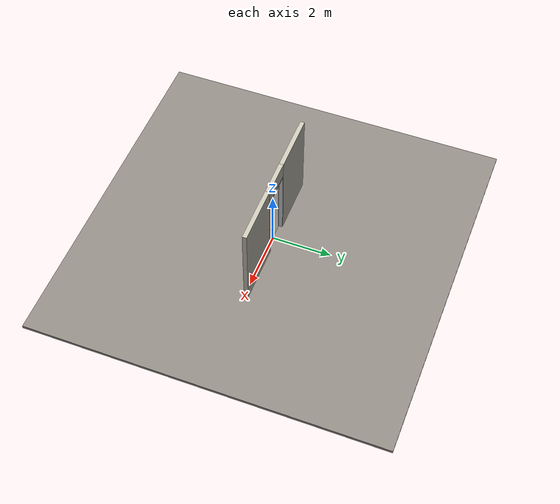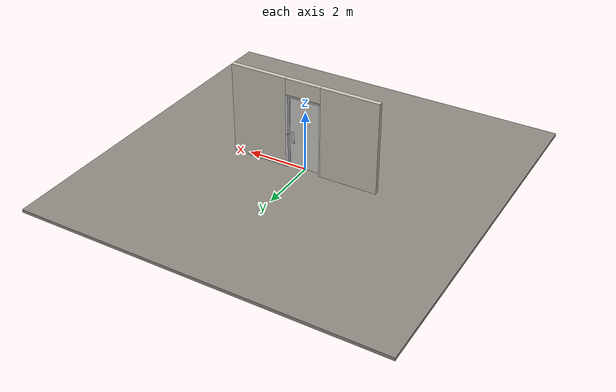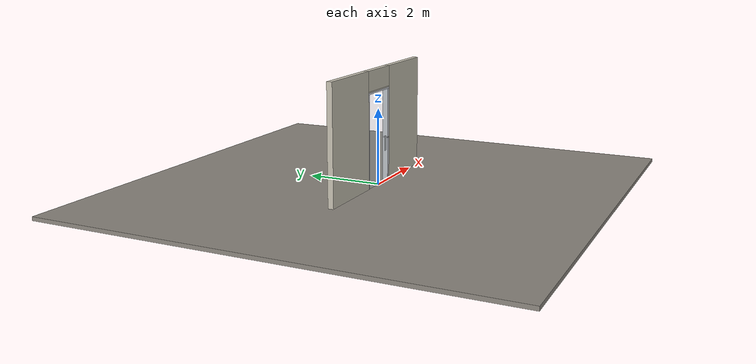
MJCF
<?xml version="1.0" ?>
<mujoco model="db0016_swing_single_minimal">
  <compiler angle="radian" meshdir="../../hardware" texturedir="../../textures" autolimits="true" inertiafromgeom="false"/>
  <option timestep="0.002" integrator="implicitfast" cone="elliptic" impratio="10" noslip_iterations="3">
    <flag multiccd="enable"/>
  </option>
  <size memory="16M"/>
  <default>
    <geom condim="4" solref="0.005 1" solimp="0.95 0.99 0.001"/>
    <joint solreflimit="0.005 1" solimplimit="0.95 0.99 0.001"/>
    <tendon solreflimit="0.005 1"/>
    <equality solref="0.002 1"/>
  </default>
  <visual>
    <headlight ambient="0.4 0.4 0.4" diffuse="0.7 0.7 0.7" specular="0.2 0.2 0.2"/>
    <quality shadowsize="4096"/>
    <map znear="0.01" zfar="60"/>
  </visual>
  <asset>
    <material name="mat_floor" rgba="0.55 0.53 0.5 1" specular="0.2" shininess="0.15" reflectance="0"/>
    <material name="mat_wall" rgba="0.78 0.76 0.7 1" specular="0.2" shininess="0.1" reflectance="0"/>
    <material name="mat_leaf" rgba="0.85 0.92 0.95 0.25" specular="0.2" shininess="0.95" reflectance="0.1"/>
    <material name="mat_glass_leaf" rgba="0.85 0.92 0.95 0.25" specular="0.2" shininess="0.95" reflectance="0.1"/>
    <material name="mat_patch" rgba="0.75 0.76 0.77 1" specular="0.8" shininess="0.65" reflectance="0.4"/>
    <material name="mat_hinge" rgba="0.65 0.66 0.68 1" specular="0.74" shininess="0.5" reflectance="0.36"/>
    <material name="mat_op_stainless" rgba="0.75 0.76 0.77 1" specular="0.8" shininess="0.65" reflectance="0.4"/>
    <material name="mat_deadbolt" rgba="0.85 0.66 0.3 1" specular="0.8" shininess="0.75" reflectance="0.4"/>
    <material name="mat_frame" rgba="0.8 0.81 0.83 1" specular="0.8" shininess="0.6" reflectance="0.4"/>
    <material name="mat_closer" rgba="0.22 0.17 0.13 1" specular="0.8" shininess="0.6" reflectance="0.4"/>
    <texture name="skybox" type="skybox" builtin="gradient" rgb1="0.6 0.7 0.85" rgb2="0.9 0.92 0.95" width="256" height="256"/>
  </asset>
  <worldbody>
    <light name="sun" pos="1.5 -2.5 4" dir="-0.3 0.5 -0.8" directional="true" diffuse="0.8 0.8 0.8" specular="0.3 0.3 0.3" castshadow="true"/>
    <light name="fill" pos="-1.5 2.5 3" dir="0.3 -0.5 -0.7" directional="true" diffuse="0.35 0.35 0.4" castshadow="false"/>
    <camera name="robot_view" pos="0 -2.863313 2.043887" xyaxes="1 0 0 0 0.26963 0.962964" fovy="52"/>
    <camera name="far_view" pos="0 2.982312 2.043887" xyaxes="-1 0 0 0 -0.26963 0.962964" fovy="52"/>
    <camera name="iso" pos="2.221337 -2.395663 2.511538" xyaxes="0.741536 0.670913 0 -0.242917 0.268487 0.932151" fovy="46"/>
    <camera name="detail_handle" pos="0.609 -0.7405 1.296" xyaxes="0.97561 0.219512 0 -0.070934 0.315262 0.94635" fovy="38"/>
    <geom name="floor" type="box" size="6 6 0.05" pos="0 0 -0.05" material="mat_floor" group="0" contype="1" conaffinity="1" friction="0.8 0.005 0.0001" density="2400"/>
    <geom name="wall_left" type="box" size="0.9585 0.0725 1.5255" pos="-1.5415 0.0595 1.5255" material="mat_wall" group="0" contype="1" conaffinity="1" friction="0.6 0.005 0.0001" density="800"/>
    <geom name="wall_right" type="box" size="0.9435 0.0725 1.5255" pos="1.5565 0.0595 1.5255" material="mat_wall" group="0" contype="1" conaffinity="1" friction="0.6 0.005 0.0001" density="800"/>
    <geom name="wall_header" type="box" size="0.598 0.0725 0.2625" pos="0.015 0.0595 2.7885" material="mat_wall" group="0" contype="1" conaffinity="1" friction="0.6 0.005 0.0001" density="800"/>
    <geom name="jamb_hinge" type="box" size="0.0225 0.0725 1.2255" pos="-0.5605 0.0595 1.2255" material="mat_frame" group="0" contype="1" conaffinity="1" friction="0.6 0.005 0.0001" density="300"/>
    <geom name="strike_1156_wall_n" type="box" size="0.0375 0.06125 0.0155" pos="0.5755 0.07075 1.156" material="mat_frame" group="0" contype="1" conaffinity="1" friction="0.6 0.005 0.0001" density="300"/>
    <geom name="strike_1156_wall_p" type="box" size="0.0157 0.003 0.0155" pos="0.5537 -0.0125 1.156" material="mat_frame" group="0" contype="1" conaffinity="1" friction="0.6 0.005 0.0001" density="300"/>
    <geom name="strike_1156_back" type="box" size="0.0228 0.0095 0.0155" pos="0.5902 0 1.156" material="mat_frame" group="0" contype="1" conaffinity="1" friction="0.6 0.005 0.0001" density="300"/>
    <geom name="jamb_strike_0" type="box" size="0.0375 0.0725 0.57025" pos="0.5755 0.0595 0.57025" material="mat_frame" group="0" contype="1" conaffinity="1" friction="0.6 0.005 0.0001" density="300"/>
    <geom name="jamb_strike_1" type="box" size="0.0375 0.0725 0.63975" pos="0.5755 0.0595 1.81125" material="mat_frame" group="0" contype="1" conaffinity="1" friction="0.6 0.005 0.0001" density="300"/>
    <geom name="jamb_head" type="box" size="0.598 0.0725 0.0225" pos="0.015 0.0595 2.4735" material="mat_frame" group="0" contype="1" conaffinity="1" friction="0.6 0.005 0.0001" density="300"/>
    <geom name="head_stud" type="box" size="0.598 0.0725 0.015" pos="0.015 0.0595 2.511" material="mat_wall" group="0" contype="1" conaffinity="1" friction="0.6 0.005 0.0001" density="500"/>
    <site name="approach_point" pos="0 -1.5 0" quat="1 0 0 0" size="0.05" rgba="0.2 0.9 0.2 0.5" group="4"/>
    <site name="goal_point" pos="0 1.5 0" quat="1 0 0 0" size="0.05" rgba="0.2 0.9 0.2 0.5" group="4"/>
    <site name="door_plane_center" pos="0 0 1.2255" quat="1 0 0 0" size="0.02" rgba="0.2 0.9 0.2 0.5" group="4"/>
    <body name="leaf" pos="-0.538 0 0">
      <inertial pos="0.588653 0.00078 1.203681" mass="84.025582" quat="-0.494005 0.492424 0.50733 0.506058" diaginertia="8.612566763 37.379520397 45.989657318"/>
      <joint name="leaf_hinge" type="hinge" axis="0 0 -1" pos="0.003 -0.013 0" limited="true" range="0 1.745329" solreflimit="0.02 1" damping="12.570702" frictionloss="1.667396" stiffness="17.118706" springref="-2.550426" armature="0.02"/>
      <geom name="leaf_glass" type="box" size="0.5335 0.006 1.219" pos="0.5395 0 1.228" material="mat_glass_leaf" group="0" contype="1" conaffinity="1" friction="0.4 0.005 0.0001" density="1"/>
      <geom name="leaf_push_plate_p" type="box" size="0.05 0.0008 0.2" pos="0.968 0.0068 1.016" material="mat_op_stainless" group="1" contype="0" conaffinity="0" density="7900"/>
      <site name="leaf_push_plate_push_p" pos="0.968 0.006 1.016" quat="1 0 0 0" size="0.012" rgba="0.2 0.9 0.2 0.5" group="4"/>
      <site name="leaf_edge_mid" pos="1.073 0 1.219" quat="1 0 0 0" size="0.02" rgba="0.2 0.9 0.2 0.5" group="4"/>
    </body>
  </worldbody>
  <sensor>
    <jointpos name="leaf_hinge_pos" joint="leaf_hinge"/>
    <jointvel name="leaf_hinge_vel" joint="leaf_hinge"/>
  </sensor>
</mujoco>
